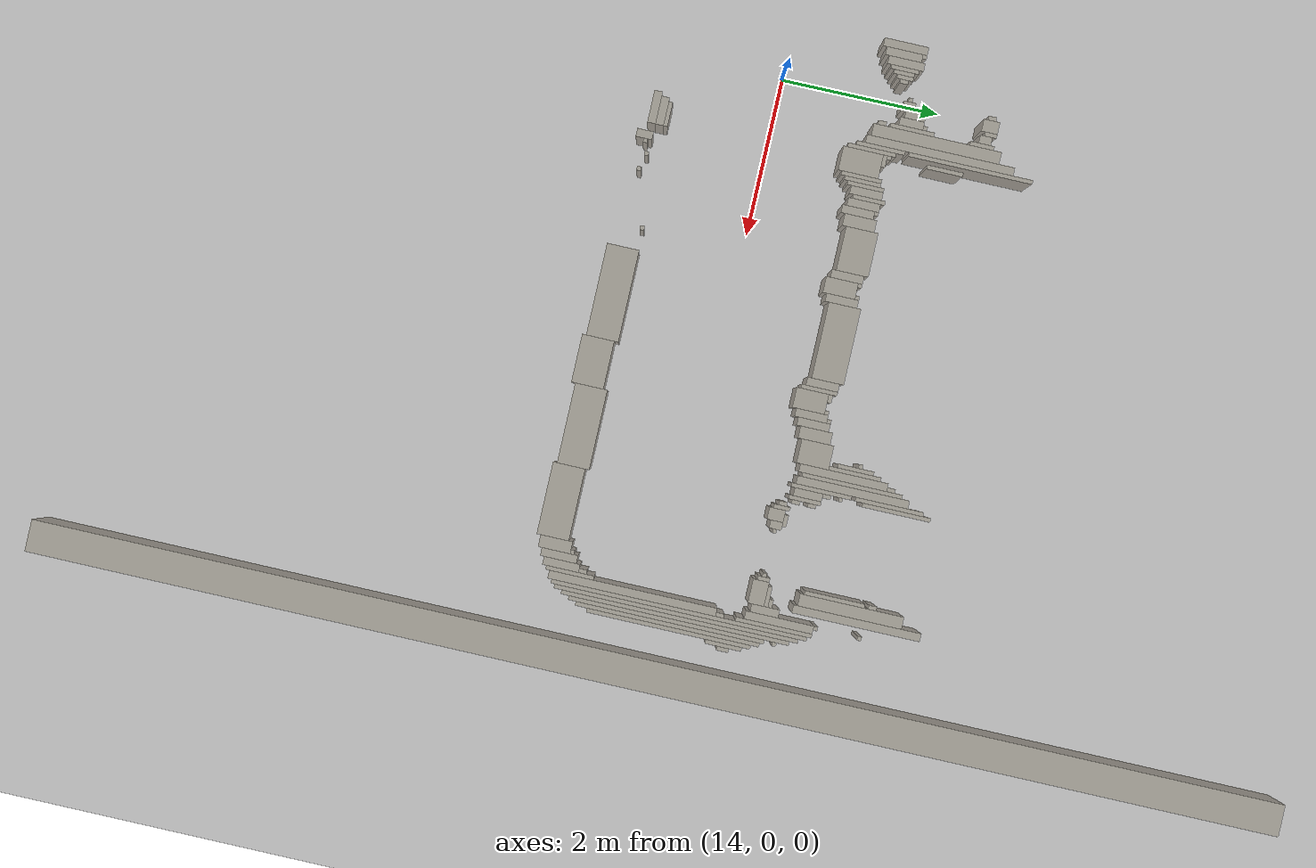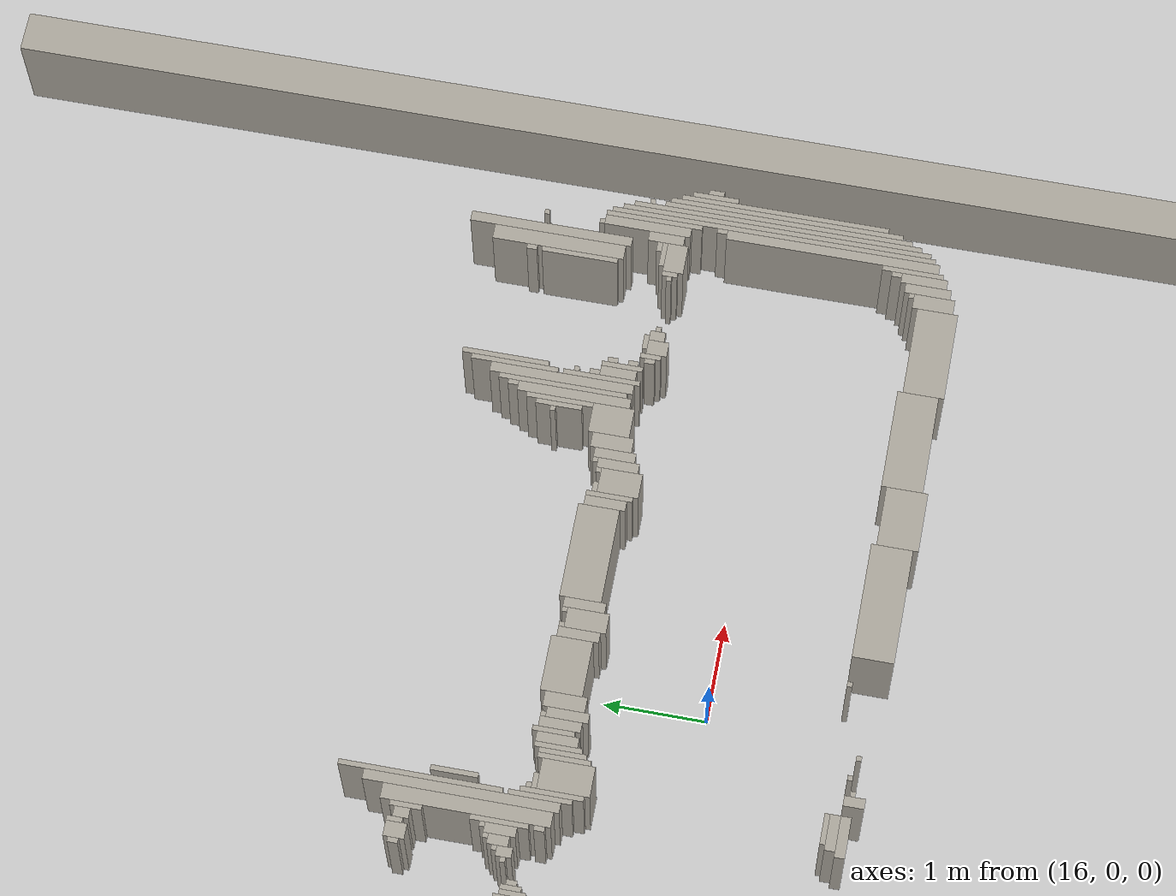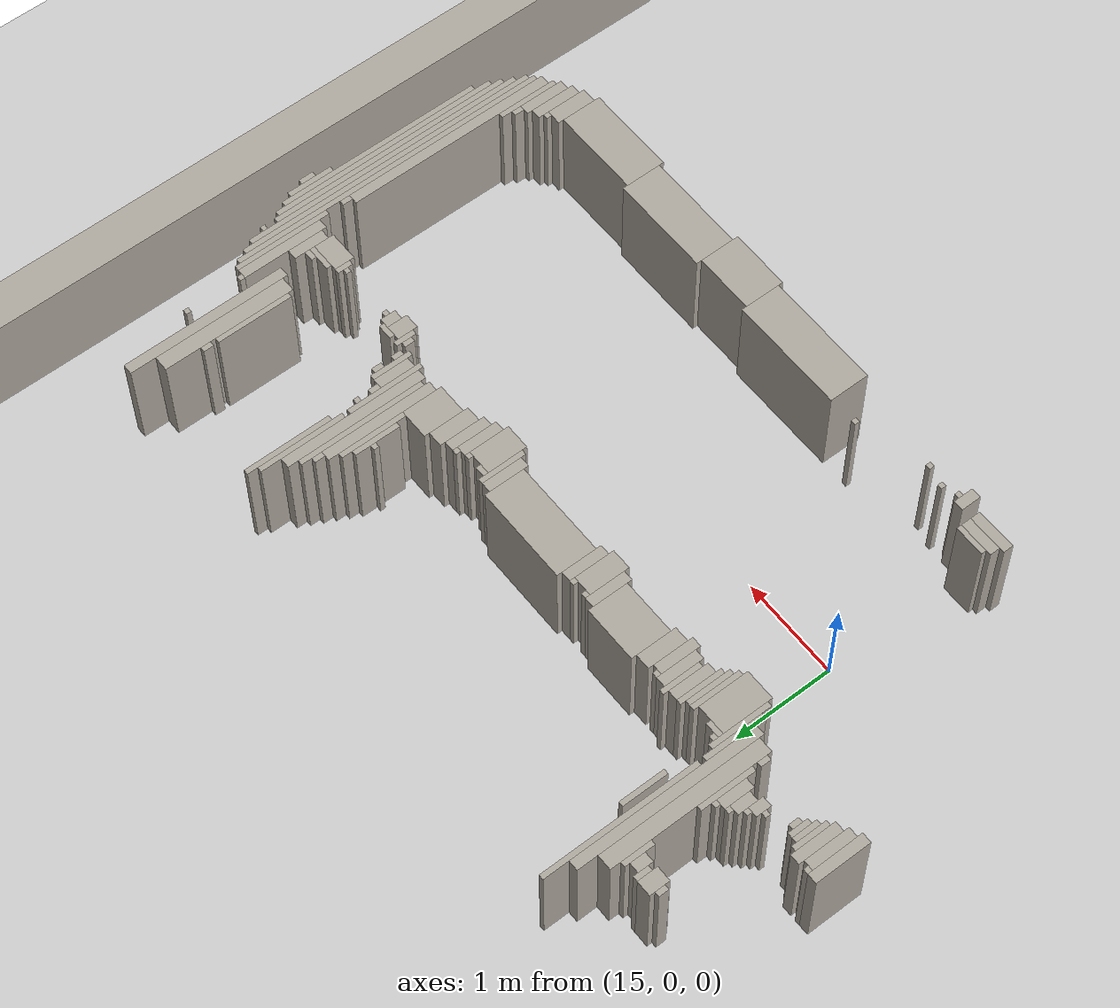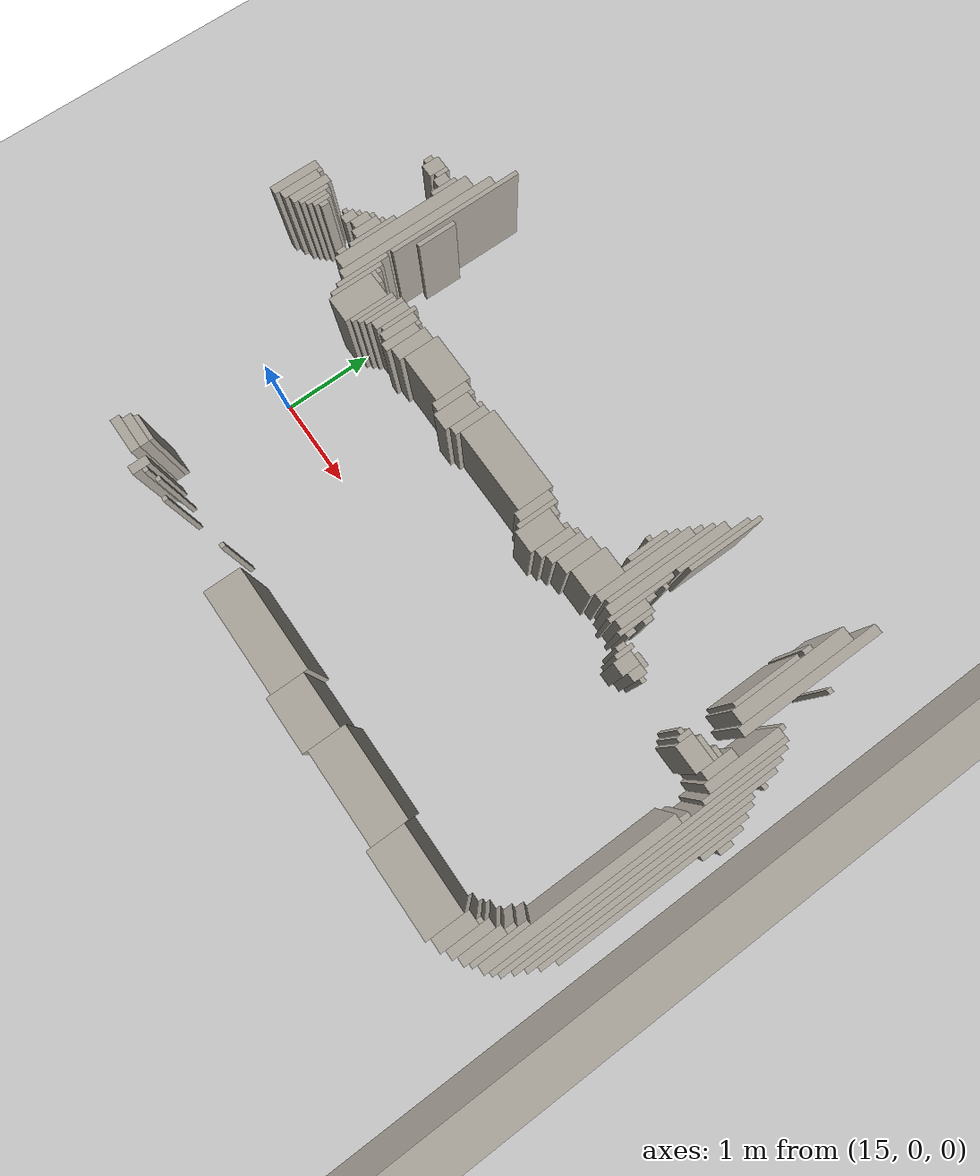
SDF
<sdf version="1.6">
 <world name="fr079_office">
  <include><uri>model://sun</uri></include>
  <include><uri>model://ground_plane</uri></include>
  <model name="fr079_office_walls">
   <static>true</static>
   <link name="w0002">
    <pose>21.602 0.094 0.500 0 0 0</pose>
    <collision name="c"><geometry><box><size>0.400 15.700 1.000</size></box></geometry></collision>
    <visual name="v">
     <geometry><box><size>0.400 15.700 1.000</size></box></geometry>
     <material><ambient>0.68 0.66 0.62 1</ambient><diffuse>0.68 0.66 0.62 1</diffuse></material>
    </visual>
   </link>
   <link name="w1569">
    <pose>18.002 -1.506 0.500 0 0 0</pose>
    <collision name="c"><geometry><box><size>0.600 0.400 1.000</size></box></geometry></collision>
    <visual name="v">
     <geometry><box><size>0.600 0.400 1.000</size></box></geometry>
     <material><ambient>0.68 0.66 0.62 1</ambient><diffuse>0.68 0.66 0.62 1</diffuse></material>
    </visual>
   </link>
   <link name="w1570">
    <pose>19.752 -1.506 0.500 0 0 0</pose>
    <collision name="c"><geometry><box><size>0.900 0.400 1.000</size></box></geometry></collision>
    <visual name="v">
     <geometry><box><size>0.900 0.400 1.000</size></box></geometry>
     <material><ambient>0.68 0.66 0.62 1</ambient><diffuse>0.68 0.66 0.62 1</diffuse></material>
    </visual>
   </link>
   <link name="w1596">
    <pose>17.127 -1.456 0.500 0 0 0</pose>
    <collision name="c"><geometry><box><size>1.150 0.400 1.000</size></box></geometry></collision>
    <visual name="v">
     <geometry><box><size>1.150 0.400 1.000</size></box></geometry>
     <material><ambient>0.68 0.66 0.62 1</ambient><diffuse>0.68 0.66 0.62 1</diffuse></material>
    </visual>
   </link>
   <link name="w1597">
    <pose>18.802 -1.456 0.500 0 0 0</pose>
    <collision name="c"><geometry><box><size>1.000 0.400 1.000</size></box></geometry></collision>
    <visual name="v">
     <geometry><box><size>1.000 0.400 1.000</size></box></geometry>
     <material><ambient>0.68 0.66 0.62 1</ambient><diffuse>0.68 0.66 0.62 1</diffuse></material>
    </visual>
   </link>
   <link name="w1598">
    <pose>20.277 -1.456 0.500 0 0 0</pose>
    <collision name="c"><geometry><box><size>0.150 0.400 1.000</size></box></geometry></collision>
    <visual name="v">
     <geometry><box><size>0.150 0.400 1.000</size></box></geometry>
     <material><ambient>0.68 0.66 0.62 1</ambient><diffuse>0.68 0.66 0.62 1</diffuse></material>
    </visual>
   </link>
   <link name="w1626">
    <pose>15.152 -1.506 0.500 0 0 0</pose>
    <collision name="c"><geometry><box><size>0.100 0.200 1.000</size></box></geometry></collision>
    <visual name="v">
     <geometry><box><size>0.100 0.200 1.000</size></box></geometry>
     <material><ambient>0.68 0.66 0.62 1</ambient><diffuse>0.68 0.66 0.62 1</diffuse></material>
    </visual>
   </link>
   <link name="w1630">
    <pose>20.402 -1.381 0.500 0 0 0</pose>
    <collision name="c"><geometry><box><size>0.100 0.450 1.000</size></box></geometry></collision>
    <visual name="v">
     <geometry><box><size>0.100 0.450 1.000</size></box></geometry>
     <material><ambient>0.68 0.66 0.62 1</ambient><diffuse>0.68 0.66 0.62 1</diffuse></material>
    </visual>
   </link>
   <link name="w1657">
    <pose>20.502 -1.331 0.500 0 0 0</pose>
    <collision name="c"><geometry><box><size>0.100 0.450 1.000</size></box></geometry></collision>
    <visual name="v">
     <geometry><box><size>0.100 0.450 1.000</size></box></geometry>
     <material><ambient>0.68 0.66 0.62 1</ambient><diffuse>0.68 0.66 0.62 1</diffuse></material>
    </visual>
   </link>
   <link name="w1678">
    <pose>14.802 -1.456 0.500 0 0 0</pose>
    <collision name="c"><geometry><box><size>0.400 0.100 1.000</size></box></geometry></collision>
    <visual name="v">
     <geometry><box><size>0.400 0.100 1.000</size></box></geometry>
     <material><ambient>0.68 0.66 0.62 1</ambient><diffuse>0.68 0.66 0.62 1</diffuse></material>
    </visual>
   </link>
   <link name="w1679">
    <pose>15.227 -1.481 0.500 0 0 0</pose>
    <collision name="c"><geometry><box><size>0.050 0.050 1.000</size></box></geometry></collision>
    <visual name="v">
     <geometry><box><size>0.050 0.050 1.000</size></box></geometry>
     <material><ambient>0.68 0.66 0.62 1</ambient><diffuse>0.68 0.66 0.62 1</diffuse></material>
    </visual>
   </link>
   <link name="w1680">
    <pose>15.577 -1.481 0.500 0 0 0</pose>
    <collision name="c"><geometry><box><size>0.050 0.050 1.000</size></box></geometry></collision>
    <visual name="v">
     <geometry><box><size>0.050 0.050 1.000</size></box></geometry>
     <material><ambient>0.68 0.66 0.62 1</ambient><diffuse>0.68 0.66 0.62 1</diffuse></material>
    </visual>
   </link>
   <link name="w1681">
    <pose>20.577 -1.206 0.500 0 0 0</pose>
    <collision name="c"><geometry><box><size>0.050 0.600 1.000</size></box></geometry></collision>
    <visual name="v">
     <geometry><box><size>0.050 0.600 1.000</size></box></geometry>
     <material><ambient>0.68 0.66 0.62 1</ambient><diffuse>0.68 0.66 0.62 1</diffuse></material>
    </visual>
   </link>
   <link name="w1693">
    <pose>15.377 -1.431 0.500 0 0 0</pose>
    <collision name="c"><geometry><box><size>0.050 0.050 1.000</size></box></geometry></collision>
    <visual name="v">
     <geometry><box><size>0.050 0.050 1.000</size></box></geometry>
     <material><ambient>0.68 0.66 0.62 1</ambient><diffuse>0.68 0.66 0.62 1</diffuse></material>
    </visual>
   </link>
   <link name="w1694">
    <pose>20.652 -0.406 0.500 0 0 0</pose>
    <collision name="c"><geometry><box><size>0.100 2.100 1.000</size></box></geometry></collision>
    <visual name="v">
     <geometry><box><size>0.100 2.100 1.000</size></box></geometry>
     <material><ambient>0.68 0.66 0.62 1</ambient><diffuse>0.68 0.66 0.62 1</diffuse></material>
    </visual>
   </link>
   <link name="w1701">
    <pose>14.827 -1.356 0.500 0 0 0</pose>
    <collision name="c"><geometry><box><size>0.350 0.100 1.000</size></box></geometry></collision>
    <visual name="v">
     <geometry><box><size>0.350 0.100 1.000</size></box></geometry>
     <material><ambient>0.68 0.66 0.62 1</ambient><diffuse>0.68 0.66 0.62 1</diffuse></material>
    </visual>
   </link>
   <link name="w1702">
    <pose>20.727 0.194 0.500 0 0 0</pose>
    <collision name="c"><geometry><box><size>0.050 3.200 1.000</size></box></geometry></collision>
    <visual name="v">
     <geometry><box><size>0.050 3.200 1.000</size></box></geometry>
     <material><ambient>0.68 0.66 0.62 1</ambient><diffuse>0.68 0.66 0.62 1</diffuse></material>
    </visual>
   </link>
   <link name="w1719">
    <pose>20.777 0.169 0.500 0 0 0</pose>
    <collision name="c"><geometry><box><size>0.050 3.050 1.000</size></box></geometry></collision>
    <visual name="v">
     <geometry><box><size>0.050 3.050 1.000</size></box></geometry>
     <material><ambient>0.68 0.66 0.62 1</ambient><diffuse>0.68 0.66 0.62 1</diffuse></material>
    </visual>
   </link>
   <link name="w1726">
    <pose>14.852 -1.281 0.500 0 0 0</pose>
    <collision name="c"><geometry><box><size>0.300 0.050 1.000</size></box></geometry></collision>
    <visual name="v">
     <geometry><box><size>0.300 0.050 1.000</size></box></geometry>
     <material><ambient>0.68 0.66 0.62 1</ambient><diffuse>0.68 0.66 0.62 1</diffuse></material>
    </visual>
   </link>
   <link name="w1727">
    <pose>16.277 -1.281 0.500 0 0 0</pose>
    <collision name="c"><geometry><box><size>0.050 0.050 1.000</size></box></geometry></collision>
    <visual name="v">
     <geometry><box><size>0.050 0.050 1.000</size></box></geometry>
     <material><ambient>0.68 0.66 0.62 1</ambient><diffuse>0.68 0.66 0.62 1</diffuse></material>
    </visual>
   </link>
   <link name="w1739">
    <pose>20.327 -1.231 0.500 0 0 0</pose>
    <collision name="c"><geometry><box><size>0.050 0.050 1.000</size></box></geometry></collision>
    <visual name="v">
     <geometry><box><size>0.050 0.050 1.000</size></box></geometry>
     <material><ambient>0.68 0.66 0.62 1</ambient><diffuse>0.68 0.66 0.62 1</diffuse></material>
    </visual>
   </link>
   <link name="w1740">
    <pose>20.827 0.169 0.500 0 0 0</pose>
    <collision name="c"><geometry><box><size>0.050 2.850 1.000</size></box></geometry></collision>
    <visual name="v">
     <geometry><box><size>0.050 2.850 1.000</size></box></geometry>
     <material><ambient>0.68 0.66 0.62 1</ambient><diffuse>0.68 0.66 0.62 1</diffuse></material>
    </visual>
   </link>
   <link name="w1753">
    <pose>20.877 0.069 0.500 0 0 0</pose>
    <collision name="c"><geometry><box><size>0.050 2.450 1.000</size></box></geometry></collision>
    <visual name="v">
     <geometry><box><size>0.050 2.450 1.000</size></box></geometry>
     <material><ambient>0.68 0.66 0.62 1</ambient><diffuse>0.68 0.66 0.62 1</diffuse></material>
    </visual>
   </link>
   <link name="w1759">
    <pose>20.527 -1.056 0.500 0 0 0</pose>
    <collision name="c"><geometry><box><size>0.050 0.100 1.000</size></box></geometry></collision>
    <visual name="v">
     <geometry><box><size>0.050 0.100 1.000</size></box></geometry>
     <material><ambient>0.68 0.66 0.62 1</ambient><diffuse>0.68 0.66 0.62 1</diffuse></material>
    </visual>
   </link>
   <link name="w1763">
    <pose>20.927 0.094 0.500 0 0 0</pose>
    <collision name="c"><geometry><box><size>0.050 2.300 1.000</size></box></geometry></collision>
    <visual name="v">
     <geometry><box><size>0.050 2.300 1.000</size></box></geometry>
     <material><ambient>0.68 0.66 0.62 1</ambient><diffuse>0.68 0.66 0.62 1</diffuse></material>
    </visual>
   </link>
   <link name="w1775">
    <pose>20.977 0.119 0.500 0 0 0</pose>
    <collision name="c"><geometry><box><size>0.050 2.050 1.000</size></box></geometry></collision>
    <visual name="v">
     <geometry><box><size>0.050 2.050 1.000</size></box></geometry>
     <material><ambient>0.68 0.66 0.62 1</ambient><diffuse>0.68 0.66 0.62 1</diffuse></material>
    </visual>
   </link>
   <link name="w1811">
    <pose>21.027 0.819 0.500 0 0 0</pose>
    <collision name="c"><geometry><box><size>0.050 0.450 1.000</size></box></geometry></collision>
    <visual name="v">
     <geometry><box><size>0.050 0.450 1.000</size></box></geometry>
     <material><ambient>0.68 0.66 0.62 1</ambient><diffuse>0.68 0.66 0.62 1</diffuse></material>
    </visual>
   </link>
   <link name="w1813">
    <pose>20.677 0.694 0.500 0 0 0</pose>
    <collision name="c"><geometry><box><size>0.050 0.100 1.000</size></box></geometry></collision>
    <visual name="v">
     <geometry><box><size>0.050 0.100 1.000</size></box></geometry>
     <material><ambient>0.68 0.66 0.62 1</ambient><diffuse>0.68 0.66 0.62 1</diffuse></material>
    </visual>
   </link>
   <link name="w1814">
    <pose>21.077 0.819 0.500 0 0 0</pose>
    <collision name="c"><geometry><box><size>0.050 0.150 1.000</size></box></geometry></collision>
    <visual name="v">
     <geometry><box><size>0.050 0.150 1.000</size></box></geometry>
     <material><ambient>0.68 0.66 0.62 1</ambient><diffuse>0.68 0.66 0.62 1</diffuse></material>
    </visual>
   </link>
   <link name="w1822">
    <pose>14.902 1.144 0.500 0 0 0</pose>
    <collision name="c"><geometry><box><size>0.300 0.500 1.000</size></box></geometry></collision>
    <visual name="v">
     <geometry><box><size>0.300 0.500 1.000</size></box></geometry>
     <material><ambient>0.68 0.66 0.62 1</ambient><diffuse>0.68 0.66 0.62 1</diffuse></material>
    </visual>
   </link>
   <link name="w1823">
    <pose>20.677 1.369 0.500 0 0 0</pose>
    <collision name="c"><geometry><box><size>0.050 0.950 1.000</size></box></geometry></collision>
    <visual name="v">
     <geometry><box><size>0.050 0.950 1.000</size></box></geometry>
     <material><ambient>0.68 0.66 0.62 1</ambient><diffuse>0.68 0.66 0.62 1</diffuse></material>
    </visual>
   </link>
   <link name="w1828">
    <pose>14.727 1.244 0.500 0 0 0</pose>
    <collision name="c"><geometry><box><size>0.050 0.600 1.000</size></box></geometry></collision>
    <visual name="v">
     <geometry><box><size>0.050 0.600 1.000</size></box></geometry>
     <material><ambient>0.68 0.66 0.62 1</ambient><diffuse>0.68 0.66 0.62 1</diffuse></material>
    </visual>
   </link>
   <link name="w1829">
    <pose>15.077 1.194 0.500 0 0 0</pose>
    <collision name="c"><geometry><box><size>0.050 0.500 1.000</size></box></geometry></collision>
    <visual name="v">
     <geometry><box><size>0.050 0.500 1.000</size></box></geometry>
     <material><ambient>0.68 0.66 0.62 1</ambient><diffuse>0.68 0.66 0.62 1</diffuse></material>
    </visual>
   </link>
   <link name="w1837">
    <pose>15.127 1.219 0.500 0 0 0</pose>
    <collision name="c"><geometry><box><size>0.050 0.450 1.000</size></box></geometry></collision>
    <visual name="v">
     <geometry><box><size>0.050 0.450 1.000</size></box></geometry>
     <material><ambient>0.68 0.66 0.62 1</ambient><diffuse>0.68 0.66 0.62 1</diffuse></material>
    </visual>
   </link>
   <link name="w1838">
    <pose>17.877 1.194 0.500 0 0 0</pose>
    <collision name="c"><geometry><box><size>0.250 0.400 1.000</size></box></geometry></collision>
    <visual name="v">
     <geometry><box><size>0.250 0.400 1.000</size></box></geometry>
     <material><ambient>0.68 0.66 0.62 1</ambient><diffuse>0.68 0.66 0.62 1</diffuse></material>
    </visual>
   </link>
   <link name="w1839">
    <pose>19.327 1.094 0.500 0 0 0</pose>
    <collision name="c"><geometry><box><size>0.150 0.200 1.000</size></box></geometry></collision>
    <visual name="v">
     <geometry><box><size>0.150 0.200 1.000</size></box></geometry>
     <material><ambient>0.68 0.66 0.62 1</ambient><diffuse>0.68 0.66 0.62 1</diffuse></material>
    </visual>
   </link>
   <link name="w1840">
    <pose>20.302 1.094 0.500 0 0 0</pose>
    <collision name="c"><geometry><box><size>0.300 0.200 1.000</size></box></geometry></collision>
    <visual name="v">
     <geometry><box><size>0.300 0.200 1.000</size></box></geometry>
     <material><ambient>0.68 0.66 0.62 1</ambient><diffuse>0.68 0.66 0.62 1</diffuse></material>
    </visual>
   </link>
   <link name="w1841">
    <pose>20.602 1.419 0.500 0 0 0</pose>
    <collision name="c"><geometry><box><size>0.100 0.850 1.000</size></box></geometry></collision>
    <visual name="v">
     <geometry><box><size>0.100 0.850 1.000</size></box></geometry>
     <material><ambient>0.68 0.66 0.62 1</ambient><diffuse>0.68 0.66 0.62 1</diffuse></material>
    </visual>
   </link>
   <link name="w1852">
    <pose>14.677 1.344 0.500 0 0 0</pose>
    <collision name="c"><geometry><box><size>0.050 0.600 1.000</size></box></geometry></collision>
    <visual name="v">
     <geometry><box><size>0.050 0.600 1.000</size></box></geometry>
     <material><ambient>0.68 0.66 0.62 1</ambient><diffuse>0.68 0.66 0.62 1</diffuse></material>
    </visual>
   </link>
   <link name="w1853">
    <pose>15.177 1.269 0.500 0 0 0</pose>
    <collision name="c"><geometry><box><size>0.050 0.450 1.000</size></box></geometry></collision>
    <visual name="v">
     <geometry><box><size>0.050 0.450 1.000</size></box></geometry>
     <material><ambient>0.68 0.66 0.62 1</ambient><diffuse>0.68 0.66 0.62 1</diffuse></material>
    </visual>
   </link>
   <link name="w1854">
    <pose>15.502 1.244 0.500 0 0 0</pose>
    <collision name="c"><geometry><box><size>0.100 0.400 1.000</size></box></geometry></collision>
    <visual name="v">
     <geometry><box><size>0.100 0.400 1.000</size></box></geometry>
     <material><ambient>0.68 0.66 0.62 1</ambient><diffuse>0.68 0.66 0.62 1</diffuse></material>
    </visual>
   </link>
   <link name="w1855">
    <pose>16.452 1.244 0.500 0 0 0</pose>
    <collision name="c"><geometry><box><size>0.200 0.400 1.000</size></box></geometry></collision>
    <visual name="v">
     <geometry><box><size>0.200 0.400 1.000</size></box></geometry>
     <material><ambient>0.68 0.66 0.62 1</ambient><diffuse>0.68 0.66 0.62 1</diffuse></material>
    </visual>
   </link>
   <link name="w1856">
    <pose>17.727 1.269 0.500 0 0 0</pose>
    <collision name="c"><geometry><box><size>0.050 0.450 1.000</size></box></geometry></collision>
    <visual name="v">
     <geometry><box><size>0.050 0.450 1.000</size></box></geometry>
     <material><ambient>0.68 0.66 0.62 1</ambient><diffuse>0.68 0.66 0.62 1</diffuse></material>
    </visual>
   </link>
   <link name="w1857">
    <pose>18.052 1.244 0.500 0 0 0</pose>
    <collision name="c"><geometry><box><size>0.100 0.400 1.000</size></box></geometry></collision>
    <visual name="v">
     <geometry><box><size>0.100 0.400 1.000</size></box></geometry>
     <material><ambient>0.68 0.66 0.62 1</ambient><diffuse>0.68 0.66 0.62 1</diffuse></material>
    </visual>
   </link>
   <link name="w1858">
    <pose>19.227 1.144 0.500 0 0 0</pose>
    <collision name="c"><geometry><box><size>0.050 0.200 1.000</size></box></geometry></collision>
    <visual name="v">
     <geometry><box><size>0.050 0.200 1.000</size></box></geometry>
     <material><ambient>0.68 0.66 0.62 1</ambient><diffuse>0.68 0.66 0.62 1</diffuse></material>
    </visual>
   </link>
   <link name="w1859">
    <pose>19.452 1.119 0.500 0 0 0</pose>
    <collision name="c"><geometry><box><size>0.100 0.150 1.000</size></box></geometry></collision>
    <visual name="v">
     <geometry><box><size>0.100 0.150 1.000</size></box></geometry>
     <material><ambient>0.68 0.66 0.62 1</ambient><diffuse>0.68 0.66 0.62 1</diffuse></material>
    </visual>
   </link>
   <link name="w1860">
    <pose>20.127 1.119 0.500 0 0 0</pose>
    <collision name="c"><geometry><box><size>0.050 0.150 1.000</size></box></geometry></collision>
    <visual name="v">
     <geometry><box><size>0.050 0.150 1.000</size></box></geometry>
     <material><ambient>0.68 0.66 0.62 1</ambient><diffuse>0.68 0.66 0.62 1</diffuse></material>
    </visual>
   </link>
   <link name="w1861">
    <pose>20.502 1.219 0.500 0 0 0</pose>
    <collision name="c"><geometry><box><size>0.100 0.350 1.000</size></box></geometry></collision>
    <visual name="v">
     <geometry><box><size>0.100 0.350 1.000</size></box></geometry>
     <material><ambient>0.68 0.66 0.62 1</ambient><diffuse>0.68 0.66 0.62 1</diffuse></material>
    </visual>
   </link>
   <link name="w1871">
    <pose>13.402 1.369 0.500 0 0 0</pose>
    <collision name="c"><geometry><box><size>0.100 0.550 1.000</size></box></geometry></collision>
    <visual name="v">
     <geometry><box><size>0.100 0.550 1.000</size></box></geometry>
     <material><ambient>0.68 0.66 0.62 1</ambient><diffuse>0.68 0.66 0.62 1</diffuse></material>
    </visual>
   </link>
   <link name="w1872">
    <pose>15.252 1.294 0.500 0 0 0</pose>
    <collision name="c"><geometry><box><size>0.100 0.400 1.000</size></box></geometry></collision>
    <visual name="v">
     <geometry><box><size>0.100 0.400 1.000</size></box></geometry>
     <material><ambient>0.68 0.66 0.62 1</ambient><diffuse>0.68 0.66 0.62 1</diffuse></material>
    </visual>
   </link>
   <link name="w1873">
    <pose>15.402 1.294 0.500 0 0 0</pose>
    <collision name="c"><geometry><box><size>0.100 0.400 1.000</size></box></geometry></collision>
    <visual name="v">
     <geometry><box><size>0.100 0.400 1.000</size></box></geometry>
     <material><ambient>0.68 0.66 0.62 1</ambient><diffuse>0.68 0.66 0.62 1</diffuse></material>
    </visual>
   </link>
   <link name="w1874">
    <pose>15.627 1.294 0.500 0 0 0</pose>
    <collision name="c"><geometry><box><size>0.150 0.400 1.000</size></box></geometry></collision>
    <visual name="v">
     <geometry><box><size>0.150 0.400 1.000</size></box></geometry>
     <material><ambient>0.68 0.66 0.62 1</ambient><diffuse>0.68 0.66 0.62 1</diffuse></material>
    </visual>
   </link>
   <link name="w1875">
    <pose>16.302 1.294 0.500 0 0 0</pose>
    <collision name="c"><geometry><box><size>0.100 0.400 1.000</size></box></geometry></collision>
    <visual name="v">
     <geometry><box><size>0.100 0.400 1.000</size></box></geometry>
     <material><ambient>0.68 0.66 0.62 1</ambient><diffuse>0.68 0.66 0.62 1</diffuse></material>
    </visual>
   </link>
   <link name="w1876">
    <pose>16.602 1.294 0.500 0 0 0</pose>
    <collision name="c"><geometry><box><size>0.100 0.400 1.000</size></box></geometry></collision>
    <visual name="v">
     <geometry><box><size>0.100 0.400 1.000</size></box></geometry>
     <material><ambient>0.68 0.66 0.62 1</ambient><diffuse>0.68 0.66 0.62 1</diffuse></material>
    </visual>
   </link>
   <link name="w1877">
    <pose>17.652 1.294 0.500 0 0 0</pose>
    <collision name="c"><geometry><box><size>0.100 0.400 1.000</size></box></geometry></collision>
    <visual name="v">
     <geometry><box><size>0.100 0.400 1.000</size></box></geometry>
     <material><ambient>0.68 0.66 0.62 1</ambient><diffuse>0.68 0.66 0.62 1</diffuse></material>
    </visual>
   </link>
   <link name="w1878">
    <pose>18.152 1.294 0.500 0 0 0</pose>
    <collision name="c"><geometry><box><size>0.100 0.400 1.000</size></box></geometry></collision>
    <visual name="v">
     <geometry><box><size>0.100 0.400 1.000</size></box></geometry>
     <material><ambient>0.68 0.66 0.62 1</ambient><diffuse>0.68 0.66 0.62 1</diffuse></material>
    </visual>
   </link>
   <link name="w1879">
    <pose>19.177 1.144 0.500 0 0 0</pose>
    <collision name="c"><geometry><box><size>0.050 0.100 1.000</size></box></geometry></collision>
    <visual name="v">
     <geometry><box><size>0.050 0.100 1.000</size></box></geometry>
     <material><ambient>0.68 0.66 0.62 1</ambient><diffuse>0.68 0.66 0.62 1</diffuse></material>
    </visual>
   </link>
   <link name="w1880">
    <pose>19.527 1.119 0.500 0 0 0</pose>
    <collision name="c"><geometry><box><size>0.050 0.050 1.000</size></box></geometry></collision>
    <visual name="v">
     <geometry><box><size>0.050 0.050 1.000</size></box></geometry>
     <material><ambient>0.68 0.66 0.62 1</ambient><diffuse>0.68 0.66 0.62 1</diffuse></material>
    </visual>
   </link>
   <link name="w1881">
    <pose>20.077 1.119 0.500 0 0 0</pose>
    <collision name="c"><geometry><box><size>0.050 0.050 1.000</size></box></geometry></collision>
    <visual name="v">
     <geometry><box><size>0.050 0.050 1.000</size></box></geometry>
     <material><ambient>0.68 0.66 0.62 1</ambient><diffuse>0.68 0.66 0.62 1</diffuse></material>
    </visual>
   </link>
   <link name="w1902">
    <pose>13.502 1.369 0.500 0 0 0</pose>
    <collision name="c"><geometry><box><size>0.100 0.450 1.000</size></box></geometry></collision>
    <visual name="v">
     <geometry><box><size>0.100 0.450 1.000</size></box></geometry>
     <material><ambient>0.68 0.66 0.62 1</ambient><diffuse>0.68 0.66 0.62 1</diffuse></material>
    </visual>
   </link>
   <link name="w1903">
    <pose>14.602 2.069 0.500 0 0 0</pose>
    <collision name="c"><geometry><box><size>0.100 1.850 1.000</size></box></geometry></collision>
    <visual name="v">
     <geometry><box><size>0.100 1.850 1.000</size></box></geometry>
     <material><ambient>0.68 0.66 0.62 1</ambient><diffuse>0.68 0.66 0.62 1</diffuse></material>
    </visual>
   </link>
   <link name="w1904">
    <pose>15.327 1.344 0.500 0 0 0</pose>
    <collision name="c"><geometry><box><size>0.050 0.400 1.000</size></box></geometry></collision>
    <visual name="v">
     <geometry><box><size>0.050 0.400 1.000</size></box></geometry>
     <material><ambient>0.68 0.66 0.62 1</ambient><diffuse>0.68 0.66 0.62 1</diffuse></material>
    </visual>
   </link>
   <link name="w1905">
    <pose>15.977 1.344 0.500 0 0 0</pose>
    <collision name="c"><geometry><box><size>0.550 0.400 1.000</size></box></geometry></collision>
    <visual name="v">
     <geometry><box><size>0.550 0.400 1.000</size></box></geometry>
     <material><ambient>0.68 0.66 0.62 1</ambient><diffuse>0.68 0.66 0.62 1</diffuse></material>
    </visual>
   </link>
   <link name="w1906">
    <pose>17.127 1.344 0.500 0 0 0</pose>
    <collision name="c"><geometry><box><size>0.950 0.400 1.000</size></box></geometry></collision>
    <visual name="v">
     <geometry><box><size>0.950 0.400 1.000</size></box></geometry>
     <material><ambient>0.68 0.66 0.62 1</ambient><diffuse>0.68 0.66 0.62 1</diffuse></material>
    </visual>
   </link>
   <link name="w1907">
    <pose>18.277 1.344 0.500 0 0 0</pose>
    <collision name="c"><geometry><box><size>0.150 0.400 1.000</size></box></geometry></collision>
    <visual name="v">
     <geometry><box><size>0.150 0.400 1.000</size></box></geometry>
     <material><ambient>0.68 0.66 0.62 1</ambient><diffuse>0.68 0.66 0.62 1</diffuse></material>
    </visual>
   </link>
   <link name="w1933">
    <pose>13.602 1.419 0.500 0 0 0</pose>
    <collision name="c"><geometry><box><size>0.100 0.450 1.000</size></box></geometry></collision>
    <visual name="v">
     <geometry><box><size>0.100 0.450 1.000</size></box></geometry>
     <material><ambient>0.68 0.66 0.62 1</ambient><diffuse>0.68 0.66 0.62 1</diffuse></material>
    </visual>
   </link>
   <link name="w1934">
    <pose>14.477 1.994 0.500 0 0 0</pose>
    <collision name="c"><geometry><box><size>0.150 1.600 1.000</size></box></geometry></collision>
    <visual name="v">
     <geometry><box><size>0.150 1.600 1.000</size></box></geometry>
     <material><ambient>0.68 0.66 0.62 1</ambient><diffuse>0.68 0.66 0.62 1</diffuse></material>
    </visual>
   </link>
   <link name="w1935">
    <pose>18.502 1.394 0.500 0 0 0</pose>
    <collision name="c"><geometry><box><size>0.300 0.400 1.000</size></box></geometry></collision>
    <visual name="v">
     <geometry><box><size>0.300 0.400 1.000</size></box></geometry>
     <material><ambient>0.68 0.66 0.62 1</ambient><diffuse>0.68 0.66 0.62 1</diffuse></material>
    </visual>
   </link>
   <link name="w1936">
    <pose>18.927 1.569 0.500 0 0 0</pose>
    <collision name="c"><geometry><box><size>0.050 0.750 1.000</size></box></geometry></collision>
    <visual name="v">
     <geometry><box><size>0.050 0.750 1.000</size></box></geometry>
     <material><ambient>0.68 0.66 0.62 1</ambient><diffuse>0.68 0.66 0.62 1</diffuse></material>
    </visual>
   </link>
   <link name="w1937">
    <pose>19.077 1.394 0.500 0 0 0</pose>
    <collision name="c"><geometry><box><size>0.050 0.400 1.000</size></box></geometry></collision>
    <visual name="v">
     <geometry><box><size>0.050 0.400 1.000</size></box></geometry>
     <material><ambient>0.68 0.66 0.62 1</ambient><diffuse>0.68 0.66 0.62 1</diffuse></material>
    </visual>
   </link>
   <link name="w1938">
    <pose>19.377 1.219 0.500 0 0 0</pose>
    <collision name="c"><geometry><box><size>0.150 0.050 1.000</size></box></geometry></collision>
    <visual name="v">
     <geometry><box><size>0.150 0.050 1.000</size></box></geometry>
     <material><ambient>0.68 0.66 0.62 1</ambient><diffuse>0.68 0.66 0.62 1</diffuse></material>
    </visual>
   </link>
   <link name="w1939">
    <pose>20.327 1.219 0.500 0 0 0</pose>
    <collision name="c"><geometry><box><size>0.250 0.050 1.000</size></box></geometry></collision>
    <visual name="v">
     <geometry><box><size>0.250 0.050 1.000</size></box></geometry>
     <material><ambient>0.68 0.66 0.62 1</ambient><diffuse>0.68 0.66 0.62 1</diffuse></material>
    </visual>
   </link>
   <link name="w1954">
    <pose>13.677 1.419 0.500 0 0 0</pose>
    <collision name="c"><geometry><box><size>0.050 0.350 1.000</size></box></geometry></collision>
    <visual name="v">
     <geometry><box><size>0.050 0.350 1.000</size></box></geometry>
     <material><ambient>0.68 0.66 0.62 1</ambient><diffuse>0.68 0.66 0.62 1</diffuse></material>
    </visual>
   </link>
   <link name="w1955">
    <pose>14.377 1.294 0.500 0 0 0</pose>
    <collision name="c"><geometry><box><size>0.050 0.100 1.000</size></box></geometry></collision>
    <visual name="v">
     <geometry><box><size>0.050 0.100 1.000</size></box></geometry>
     <material><ambient>0.68 0.66 0.62 1</ambient><diffuse>0.68 0.66 0.62 1</diffuse></material>
    </visual>
   </link>
   <link name="w1956">
    <pose>18.702 1.794 0.500 0 0 0</pose>
    <collision name="c"><geometry><box><size>0.100 1.100 1.000</size></box></geometry></collision>
    <visual name="v">
     <geometry><box><size>0.100 1.100 1.000</size></box></geometry>
     <material><ambient>0.68 0.66 0.62 1</ambient><diffuse>0.68 0.66 0.62 1</diffuse></material>
    </visual>
   </link>
   <link name="w1957">
    <pose>18.852 1.944 0.500 0 0 0</pose>
    <collision name="c"><geometry><box><size>0.100 1.400 1.000</size></box></geometry></collision>
    <visual name="v">
     <geometry><box><size>0.100 1.400 1.000</size></box></geometry>
     <material><ambient>0.68 0.66 0.62 1</ambient><diffuse>0.68 0.66 0.62 1</diffuse></material>
    </visual>
   </link>
   <link name="w1958">
    <pose>19.002 1.419 0.500 0 0 0</pose>
    <collision name="c"><geometry><box><size>0.100 0.350 1.000</size></box></geometry></collision>
    <visual name="v">
     <geometry><box><size>0.100 0.350 1.000</size></box></geometry>
     <material><ambient>0.68 0.66 0.62 1</ambient><diffuse>0.68 0.66 0.62 1</diffuse></material>
    </visual>
   </link>
   <link name="w1959">
    <pose>19.127 1.294 0.500 0 0 0</pose>
    <collision name="c"><geometry><box><size>0.050 0.100 1.000</size></box></geometry></collision>
    <visual name="v">
     <geometry><box><size>0.050 0.100 1.000</size></box></geometry>
     <material><ambient>0.68 0.66 0.62 1</ambient><diffuse>0.68 0.66 0.62 1</diffuse></material>
    </visual>
   </link>
   <link name="w1960">
    <pose>20.402 1.269 0.500 0 0 0</pose>
    <collision name="c"><geometry><box><size>0.100 0.050 1.000</size></box></geometry></collision>
    <visual name="v">
     <geometry><box><size>0.100 0.050 1.000</size></box></geometry>
     <material><ambient>0.68 0.66 0.62 1</ambient><diffuse>0.68 0.66 0.62 1</diffuse></material>
    </visual>
   </link>
   <link name="w1970">
    <pose>13.727 1.419 0.500 0 0 0</pose>
    <collision name="c"><geometry><box><size>0.050 0.250 1.000</size></box></geometry></collision>
    <visual name="v">
     <geometry><box><size>0.050 0.250 1.000</size></box></geometry>
     <material><ambient>0.68 0.66 0.62 1</ambient><diffuse>0.68 0.66 0.62 1</diffuse></material>
    </visual>
   </link>
   <link name="w1971">
    <pose>18.777 1.919 0.500 0 0 0</pose>
    <collision name="c"><geometry><box><size>0.050 1.250 1.000</size></box></geometry></collision>
    <visual name="v">
     <geometry><box><size>0.050 1.250 1.000</size></box></geometry>
     <material><ambient>0.68 0.66 0.62 1</ambient><diffuse>0.68 0.66 0.62 1</diffuse></material>
    </visual>
   </link>
   <link name="w1986">
    <pose>13.777 1.444 0.500 0 0 0</pose>
    <collision name="c"><geometry><box><size>0.050 0.200 1.000</size></box></geometry></collision>
    <visual name="v">
     <geometry><box><size>0.050 0.200 1.000</size></box></geometry>
     <material><ambient>0.68 0.66 0.62 1</ambient><diffuse>0.68 0.66 0.62 1</diffuse></material>
    </visual>
   </link>
   <link name="w2000">
    <pose>13.827 1.444 0.500 0 0 0</pose>
    <collision name="c"><geometry><box><size>0.050 0.100 1.000</size></box></geometry></collision>
    <visual name="v">
     <geometry><box><size>0.050 0.100 1.000</size></box></geometry>
     <material><ambient>0.68 0.66 0.62 1</ambient><diffuse>0.68 0.66 0.62 1</diffuse></material>
    </visual>
   </link>
   <link name="w2001">
    <pose>14.377 1.669 0.500 0 0 0</pose>
    <collision name="c"><geometry><box><size>0.050 0.550 1.000</size></box></geometry></collision>
    <visual name="v">
     <geometry><box><size>0.050 0.550 1.000</size></box></geometry>
     <material><ambient>0.68 0.66 0.62 1</ambient><diffuse>0.68 0.66 0.62 1</diffuse></material>
    </visual>
   </link>
   <link name="w2002">
    <pose>14.827 1.419 0.500 0 0 0</pose>
    <collision name="c"><geometry><box><size>0.150 0.050 1.000</size></box></geometry></collision>
    <visual name="v">
     <geometry><box><size>0.150 0.050 1.000</size></box></geometry>
     <material><ambient>0.68 0.66 0.62 1</ambient><diffuse>0.68 0.66 0.62 1</diffuse></material>
    </visual>
   </link>
   <link name="w2003">
    <pose>17.802 1.419 0.500 0 0 0</pose>
    <collision name="c"><geometry><box><size>0.100 0.050 1.000</size></box></geometry></collision>
    <visual name="v">
     <geometry><box><size>0.100 0.050 1.000</size></box></geometry>
     <material><ambient>0.68 0.66 0.62 1</ambient><diffuse>0.68 0.66 0.62 1</diffuse></material>
    </visual>
   </link>
   <link name="w2004">
    <pose>17.977 1.419 0.500 0 0 0</pose>
    <collision name="c"><geometry><box><size>0.050 0.050 1.000</size></box></geometry></collision>
    <visual name="v">
     <geometry><box><size>0.050 0.050 1.000</size></box></geometry>
     <material><ambient>0.68 0.66 0.62 1</ambient><diffuse>0.68 0.66 0.62 1</diffuse></material>
    </visual>
   </link>
   <link name="w2006">
    <pose>20.877 1.419 0.500 0 0 0</pose>
    <collision name="c"><geometry><box><size>0.050 0.050 1.000</size></box></geometry></collision>
    <visual name="v">
     <geometry><box><size>0.050 0.050 1.000</size></box></geometry>
     <material><ambient>0.68 0.66 0.62 1</ambient><diffuse>0.68 0.66 0.62 1</diffuse></material>
    </visual>
   </link>
   <link name="w2016">
    <pose>14.777 1.469 0.500 0 0 0</pose>
    <collision name="c"><geometry><box><size>0.050 0.050 1.000</size></box></geometry></collision>
    <visual name="v">
     <geometry><box><size>0.050 0.050 1.000</size></box></geometry>
     <material><ambient>0.68 0.66 0.62 1</ambient><diffuse>0.68 0.66 0.62 1</diffuse></material>
    </visual>
   </link>
   <link name="w2017">
    <pose>15.477 1.469 0.500 0 0 0</pose>
    <collision name="c"><geometry><box><size>0.050 0.050 1.000</size></box></geometry></collision>
    <visual name="v">
     <geometry><box><size>0.050 0.050 1.000</size></box></geometry>
     <material><ambient>0.68 0.66 0.62 1</ambient><diffuse>0.68 0.66 0.62 1</diffuse></material>
    </visual>
   </link>
   <link name="w2018">
    <pose>16.377 1.469 0.500 0 0 0</pose>
    <collision name="c"><geometry><box><size>0.050 0.050 1.000</size></box></geometry></collision>
    <visual name="v">
     <geometry><box><size>0.050 0.050 1.000</size></box></geometry>
     <material><ambient>0.68 0.66 0.62 1</ambient><diffuse>0.68 0.66 0.62 1</diffuse></material>
    </visual>
   </link>
   <link name="w2019">
    <pose>16.527 1.469 0.500 0 0 0</pose>
    <collision name="c"><geometry><box><size>0.050 0.050 1.000</size></box></geometry></collision>
    <visual name="v">
     <geometry><box><size>0.050 0.050 1.000</size></box></geometry>
     <material><ambient>0.68 0.66 0.62 1</ambient><diffuse>0.68 0.66 0.62 1</diffuse></material>
    </visual>
   </link>
   <link name="w2020">
    <pose>18.077 1.469 0.500 0 0 0</pose>
    <collision name="c"><geometry><box><size>0.050 0.050 1.000</size></box></geometry></collision>
    <visual name="v">
     <geometry><box><size>0.050 0.050 1.000</size></box></geometry>
     <material><ambient>0.68 0.66 0.62 1</ambient><diffuse>0.68 0.66 0.62 1</diffuse></material>
    </visual>
   </link>
   <link name="w2021">
    <pose>19.127 1.494 0.500 0 0 0</pose>
    <collision name="c"><geometry><box><size>0.050 0.100 1.000</size></box></geometry></collision>
    <visual name="v">
     <geometry><box><size>0.050 0.100 1.000</size></box></geometry>
     <material><ambient>0.68 0.66 0.62 1</ambient><diffuse>0.68 0.66 0.62 1</diffuse></material>
    </visual>
   </link>
   <link name="w2034">
    <pose>14.102 1.569 0.500 0 0 0</pose>
    <collision name="c"><geometry><box><size>0.100 0.150 1.000</size></box></geometry></collision>
    <visual name="v">
     <geometry><box><size>0.100 0.150 1.000</size></box></geometry>
     <material><ambient>0.68 0.66 0.62 1</ambient><diffuse>0.68 0.66 0.62 1</diffuse></material>
    </visual>
   </link>
   <link name="w2035">
    <pose>14.302 1.644 0.500 0 0 0</pose>
    <collision name="c"><geometry><box><size>0.100 0.300 1.000</size></box></geometry></collision>
    <visual name="v">
     <geometry><box><size>0.100 0.300 1.000</size></box></geometry>
     <material><ambient>0.68 0.66 0.62 1</ambient><diffuse>0.68 0.66 0.62 1</diffuse></material>
    </visual>
   </link>
   <link name="w2050">
    <pose>14.027 1.569 0.500 0 0 0</pose>
    <collision name="c"><geometry><box><size>0.050 0.050 1.000</size></box></geometry></collision>
    <visual name="v">
     <geometry><box><size>0.050 0.050 1.000</size></box></geometry>
     <material><ambient>0.68 0.66 0.62 1</ambient><diffuse>0.68 0.66 0.62 1</diffuse></material>
    </visual>
   </link>
   <link name="w2051">
    <pose>14.202 1.644 0.500 0 0 0</pose>
    <collision name="c"><geometry><box><size>0.100 0.200 1.000</size></box></geometry></collision>
    <visual name="v">
     <geometry><box><size>0.100 0.200 1.000</size></box></geometry>
     <material><ambient>0.68 0.66 0.62 1</ambient><diffuse>0.68 0.66 0.62 1</diffuse></material>
    </visual>
   </link>
   <link name="w2052">
    <pose>20.402 2.344 0.500 0 0 0</pose>
    <collision name="c"><geometry><box><size>0.100 1.600 1.000</size></box></geometry></collision>
    <visual name="v">
     <geometry><box><size>0.100 1.600 1.000</size></box></geometry>
     <material><ambient>0.68 0.66 0.62 1</ambient><diffuse>0.68 0.66 0.62 1</diffuse></material>
    </visual>
   </link>
   <link name="w2063">
    <pose>13.477 1.619 0.500 0 0 0</pose>
    <collision name="c"><geometry><box><size>0.050 0.050 1.000</size></box></geometry></collision>
    <visual name="v">
     <geometry><box><size>0.050 0.050 1.000</size></box></geometry>
     <material><ambient>0.68 0.66 0.62 1</ambient><diffuse>0.68 0.66 0.62 1</diffuse></material>
    </visual>
   </link>
   <link name="w2064">
    <pose>18.627 1.919 0.500 0 0 0</pose>
    <collision name="c"><geometry><box><size>0.050 0.650 1.000</size></box></geometry></collision>
    <visual name="v">
     <geometry><box><size>0.050 0.650 1.000</size></box></geometry>
     <material><ambient>0.68 0.66 0.62 1</ambient><diffuse>0.68 0.66 0.62 1</diffuse></material>
    </visual>
   </link>
   <link name="w2065">
    <pose>18.977 1.644 0.500 0 0 0</pose>
    <collision name="c"><geometry><box><size>0.050 0.100 1.000</size></box></geometry></collision>
    <visual name="v">
     <geometry><box><size>0.050 0.100 1.000</size></box></geometry>
     <material><ambient>0.68 0.66 0.62 1</ambient><diffuse>0.68 0.66 0.62 1</diffuse></material>
    </visual>
   </link>
   <link name="w2066">
    <pose>20.277 2.244 0.500 0 0 0</pose>
    <collision name="c"><geometry><box><size>0.150 1.300 1.000</size></box></geometry></collision>
    <visual name="v">
     <geometry><box><size>0.150 1.300 1.000</size></box></geometry>
     <material><ambient>0.68 0.66 0.62 1</ambient><diffuse>0.68 0.66 0.62 1</diffuse></material>
    </visual>
   </link>
   <link name="w2077">
    <pose>14.127 1.669 0.500 0 0 0</pose>
    <collision name="c"><geometry><box><size>0.050 0.050 1.000</size></box></geometry></collision>
    <visual name="v">
     <geometry><box><size>0.050 0.050 1.000</size></box></geometry>
     <material><ambient>0.68 0.66 0.62 1</ambient><diffuse>0.68 0.66 0.62 1</diffuse></material>
    </visual>
   </link>
   <link name="w2078">
    <pose>20.177 2.019 0.500 0 0 0</pose>
    <collision name="c"><geometry><box><size>0.050 0.750 1.000</size></box></geometry></collision>
    <visual name="v">
     <geometry><box><size>0.050 0.750 1.000</size></box></geometry>
     <material><ambient>0.68 0.66 0.62 1</ambient><diffuse>0.68 0.66 0.62 1</diffuse></material>
    </visual>
   </link>
   <link name="w2089">
    <pose>14.677 2.469 0.500 0 0 0</pose>
    <collision name="c"><geometry><box><size>0.050 1.550 1.000</size></box></geometry></collision>
    <visual name="v">
     <geometry><box><size>0.050 1.550 1.000</size></box></geometry>
     <material><ambient>0.68 0.66 0.62 1</ambient><diffuse>0.68 0.66 0.62 1</diffuse></material>
    </visual>
   </link>
   <link name="w2090">
    <pose>18.577 1.919 0.500 0 0 0</pose>
    <collision name="c"><geometry><box><size>0.050 0.450 1.000</size></box></geometry></collision>
    <visual name="v">
     <geometry><box><size>0.050 0.450 1.000</size></box></geometry>
     <material><ambient>0.68 0.66 0.62 1</ambient><diffuse>0.68 0.66 0.62 1</diffuse></material>
    </visual>
   </link>
   <link name="w2102">
    <pose>14.227 1.769 0.500 0 0 0</pose>
    <collision name="c"><geometry><box><size>0.050 0.050 1.000</size></box></geometry></collision>
    <visual name="v">
     <geometry><box><size>0.050 0.050 1.000</size></box></geometry>
     <material><ambient>0.68 0.66 0.62 1</ambient><diffuse>0.68 0.66 0.62 1</diffuse></material>
    </visual>
   </link>
   <link name="w2120">
    <pose>14.327 1.819 0.500 0 0 0</pose>
    <collision name="c"><geometry><box><size>0.050 0.050 1.000</size></box></geometry></collision>
    <visual name="v">
     <geometry><box><size>0.050 0.050 1.000</size></box></geometry>
     <material><ambient>0.68 0.66 0.62 1</ambient><diffuse>0.68 0.66 0.62 1</diffuse></material>
    </visual>
   </link>
   <link name="w2122">
    <pose>18.977 1.819 0.500 0 0 0</pose>
    <collision name="c"><geometry><box><size>0.050 0.050 1.000</size></box></geometry></collision>
    <visual name="v">
     <geometry><box><size>0.050 0.050 1.000</size></box></geometry>
     <material><ambient>0.68 0.66 0.62 1</ambient><diffuse>0.68 0.66 0.62 1</diffuse></material>
    </visual>
   </link>
   <link name="w2143">
    <pose>20.577 1.869 0.500 0 0 0</pose>
    <collision name="c"><geometry><box><size>0.050 0.050 1.000</size></box></geometry></collision>
    <visual name="v">
     <geometry><box><size>0.050 0.050 1.000</size></box></geometry>
     <material><ambient>0.68 0.66 0.62 1</ambient><diffuse>0.68 0.66 0.62 1</diffuse></material>
    </visual>
   </link>
   <link name="w2166">
    <pose>14.777 2.169 0.500 0 0 0</pose>
    <collision name="c"><geometry><box><size>0.050 0.450 1.000</size></box></geometry></collision>
    <visual name="v">
     <geometry><box><size>0.050 0.450 1.000</size></box></geometry>
     <material><ambient>0.68 0.66 0.62 1</ambient><diffuse>0.68 0.66 0.62 1</diffuse></material>
    </visual>
   </link>
   <link name="w2167">
    <pose>18.527 1.969 0.500 0 0 0</pose>
    <collision name="c"><geometry><box><size>0.050 0.050 1.000</size></box></geometry></collision>
    <visual name="v">
     <geometry><box><size>0.050 0.050 1.000</size></box></geometry>
     <material><ambient>0.68 0.66 0.62 1</ambient><diffuse>0.68 0.66 0.62 1</diffuse></material>
    </visual>
   </link>
   <link name="w2179">
    <pose>18.927 2.419 0.500 0 0 0</pose>
    <collision name="c"><geometry><box><size>0.050 0.850 1.000</size></box></geometry></collision>
    <visual name="v">
     <geometry><box><size>0.050 0.850 1.000</size></box></geometry>
     <material><ambient>0.68 0.66 0.62 1</ambient><diffuse>0.68 0.66 0.62 1</diffuse></material>
    </visual>
   </link>
   <link name="w2200">
    <pose>18.977 2.519 0.500 0 0 0</pose>
    <collision name="c"><geometry><box><size>0.050 0.850 1.000</size></box></geometry></collision>
    <visual name="v">
     <geometry><box><size>0.050 0.850 1.000</size></box></geometry>
     <material><ambient>0.68 0.66 0.62 1</ambient><diffuse>0.68 0.66 0.62 1</diffuse></material>
    </visual>
   </link>
   <link name="w2251">
    <pose>18.727 2.394 0.500 0 0 0</pose>
    <collision name="c"><geometry><box><size>0.050 0.100 1.000</size></box></geometry></collision>
    <visual name="v">
     <geometry><box><size>0.050 0.100 1.000</size></box></geometry>
     <material><ambient>0.68 0.66 0.62 1</ambient><diffuse>0.68 0.66 0.62 1</diffuse></material>
    </visual>
   </link>
   <link name="w2259">
    <pose>14.377 2.544 0.500 0 0 0</pose>
    <collision name="c"><geometry><box><size>0.050 0.300 1.000</size></box></geometry></collision>
    <visual name="v">
     <geometry><box><size>0.050 0.300 1.000</size></box></geometry>
     <material><ambient>0.68 0.66 0.62 1</ambient><diffuse>0.68 0.66 0.62 1</diffuse></material>
    </visual>
   </link>
   <link name="w2261">
    <pose>20.577 2.419 0.500 0 0 0</pose>
    <collision name="c"><geometry><box><size>0.050 0.050 1.000</size></box></geometry></collision>
    <visual name="v">
     <geometry><box><size>0.050 0.050 1.000</size></box></geometry>
     <material><ambient>0.68 0.66 0.62 1</ambient><diffuse>0.68 0.66 0.62 1</diffuse></material>
    </visual>
   </link>
   <link name="w2266">
    <pose>20.177 2.494 0.500 0 0 0</pose>
    <collision name="c"><geometry><box><size>0.050 0.100 1.000</size></box></geometry></collision>
    <visual name="v">
     <geometry><box><size>0.050 0.100 1.000</size></box></geometry>
     <material><ambient>0.68 0.66 0.62 1</ambient><diffuse>0.68 0.66 0.62 1</diffuse></material>
    </visual>
   </link>
   <link name="w2281">
    <pose>14.127 2.594 0.500 0 0 0</pose>
    <collision name="c"><geometry><box><size>0.150 0.200 1.000</size></box></geometry></collision>
    <visual name="v">
     <geometry><box><size>0.150 0.200 1.000</size></box></geometry>
     <material><ambient>0.68 0.66 0.62 1</ambient><diffuse>0.68 0.66 0.62 1</diffuse></material>
    </visual>
   </link>
   <link name="w2282">
    <pose>14.302 2.569 0.500 0 0 0</pose>
    <collision name="c"><geometry><box><size>0.100 0.150 1.000</size></box></geometry></collision>
    <visual name="v">
     <geometry><box><size>0.100 0.150 1.000</size></box></geometry>
     <material><ambient>0.68 0.66 0.62 1</ambient><diffuse>0.68 0.66 0.62 1</diffuse></material>
    </visual>
   </link>
   <link name="w2303">
    <pose>14.027 2.594 0.500 0 0 0</pose>
    <collision name="c"><geometry><box><size>0.050 0.100 1.000</size></box></geometry></collision>
    <visual name="v">
     <geometry><box><size>0.050 0.100 1.000</size></box></geometry>
     <material><ambient>0.68 0.66 0.62 1</ambient><diffuse>0.68 0.66 0.62 1</diffuse></material>
    </visual>
   </link>
   <link name="w2304">
    <pose>14.227 2.619 0.500 0 0 0</pose>
    <collision name="c"><geometry><box><size>0.050 0.150 1.000</size></box></geometry></collision>
    <visual name="v">
     <geometry><box><size>0.050 0.150 1.000</size></box></geometry>
     <material><ambient>0.68 0.66 0.62 1</ambient><diffuse>0.68 0.66 0.62 1</diffuse></material>
    </visual>
   </link>
  </model>
 </world>
</sdf>
